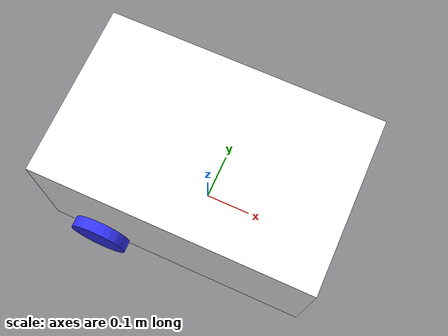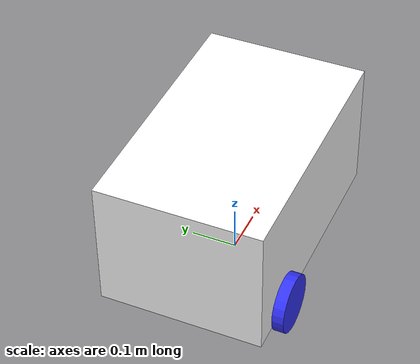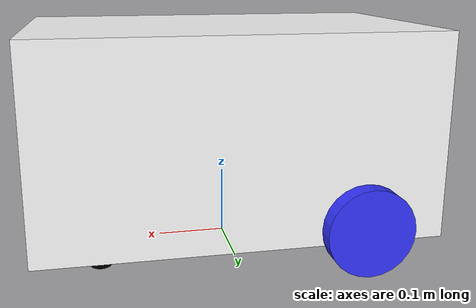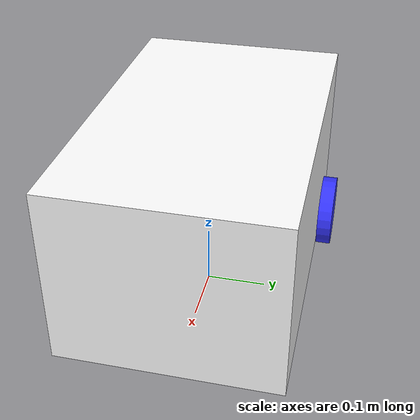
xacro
<?xml version="1.0"?>
<robot xmlns:xacro="http://www.ros.org/wiki/xacro" >

    <xacro:include filename="inertial_macros.xacro"/>

    <!-- MATERIALS -->

    <material name="white">
        <color rgba="1 1 1 1"/>
    </material>

    <material name="orange">
        <color rgba="1 0.3 0.1 1"/>
    </material>

    <material name="blue">
        <color rgba="0.2 0.2 1 1"/>
    </material>

    <material name="black">
        <color rgba="0 0 0 1"/>
    </material>

    <material name="red">
        <color rgba="1 0 0 1"/>
    </material>

    <!-- BASE LINK -->

    <link name="base_link">

    </link>

    <!-- BASE FOOTPRINT LINK -->
    <joint name="base_footprint_joint" type="fixed">
        <parent link="base_link"/>
        <child link="base_footprint"/>
        <origin xyz="0 0 0" rpy="0 0 0"/>
    </joint>

    <link name="base_footprint">

    </link>

    <!-- CHASSIS LINK -->

    <joint name="chassis_joint" type="fixed">
        <parent link="base_link"/>
        <child link="chassis"/>
        <origin xyz="0 0 0"/>
    </joint>

    <link name="chassis">
        <visual>
            <origin xyz="0 0 0.185"/>
            <geometry>
                <box size="0.565 0.355 0.29"/>
            </geometry>
            <material name="white"/>
        </visual>
        <collision>
            <origin xyz="0 0 0.15375"/>
            <geometry>
                <box size="0.565 0.355 0.29"/>
            </geometry>
        </collision>
        <xacro:inertial_box mass="0.5" x="0.565" y="0.355" z="0.29">
            <origin xyz="0 0 0.15375" rpy="0 0 0"/>
        </xacro:inertial_box>
    </link>

    <gazebo reference="chassis">
        <material>Gazebo/White</material>
    </gazebo>

    <!-- FOR NOW NO FRICTION -->
    <!-- LEFT CASTER WHEEL LINK -->
    <joint name="left_caster_wheel_joint" type="fixed">
        <parent link="chassis"/>
        <child link="left_caster_wheel"/>
        <origin xyz="0.1925 0.1025 0.025"/>
    </joint>

    <link name="left_caster_wheel">
        <visual>
            <geometry>
                <sphere radius="0.025"/>
            </geometry>
            <material name="black"/>
        </visual>
    </link>

    <gazebo reference="left_caster_wheel">
        <material>Gazebo/Black</material>
        <mu1 value="0.01"/>
        <mu2 value="0.01"/>
    </gazebo>

    <!-- RIGHT CASTER WHEEL LINK -->
    <joint name="right_caster_wheel_joint" type="fixed">
        <parent link="chassis"/>
        <child link="right_caster_wheel"/>
        <origin xyz="0.1925 -0.1025 0.025"/>
    </joint>

    <link name="right_caster_wheel">
        <visual>
            <geometry>
                <sphere radius="0.025"/>
            </geometry>
            <material name="black"/>
        </visual>
    </link>

    <gazebo reference="right_caster_wheel">
        <material>Gazebo/Black</material>
        <mu1 value="0.01"/>
        <mu2 value="0.01"/>
    </gazebo>

    <!-- LEFT BACK WHEEL LINK-->

    <joint name="left_back_wheel_joint" type="continuous">
        <parent link="base_link"/>
        <child link="left_back_wheel"/>
        <origin xyz="-0.1675 0.19 0.0625" rpy="-${pi/2} 0 0"/>
        <axis xyz="0 0 1"/>
    </joint>

    <link name="left_back_wheel">
        <visual>
            <geometry>
                <cylinder radius="0.0625" length="0.025"/>
            </geometry>
            <material name="blue"/>
        </visual>
        <collision>
            <geometry>
                <cylinder radius="0.0625" length="0.025"/>
            </geometry>
        </collision>
        <xacro:inertial_cylinder mass="0.1" length="0.0625" radius="0.025">
            <origin xyz="0 0 0" rpy="0 0 0"/>
        </xacro:inertial_cylinder>
    </link>

    <gazebo reference="left_back_wheel">
        <material>Gazebo/Blue</material>
    </gazebo>

    <!-- RIGHT BACK WHEEL LINK-->

    <joint name="right_back_wheel_joint" type="continuous">
        <parent link="base_link"/>
        <child link="right_back_wheel"/>
        <origin xyz="-0.1675 -0.19 0.0625" rpy="${pi/2} 0 0"/>
        <axis xyz="0 0 -1"/>
    </joint>

    <link name="right_back_wheel">
        <visual>
            <geometry>
                <cylinder radius="0.0625" length="0.025"/>
            </geometry>
            <material name="blue"/>
        </visual>
        <collision>
            <geometry>
                <cylinder radius="0.0625" length="0.025"/>
            </geometry>
        </collision>
        <xacro:inertial_cylinder mass="0.1" length="0.0625" radius="0.025">
            <origin xyz="0 0 0" rpy="0 0 0"/>
        </xacro:inertial_cylinder>
    </link>

    <gazebo reference="right_back_wheel">
        <material>Gazebo/Blue</material>
    </gazebo>

</robot>
